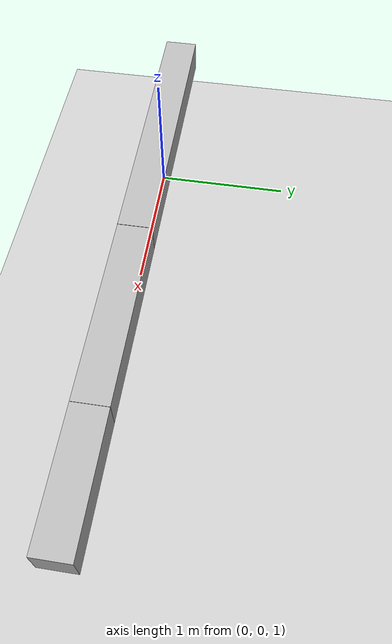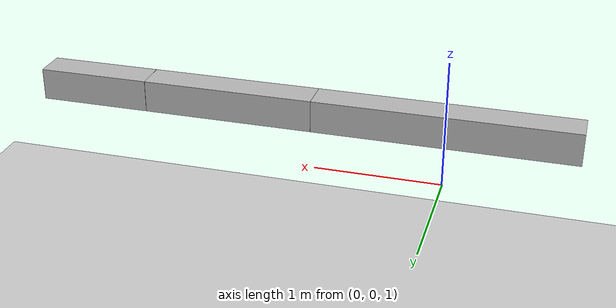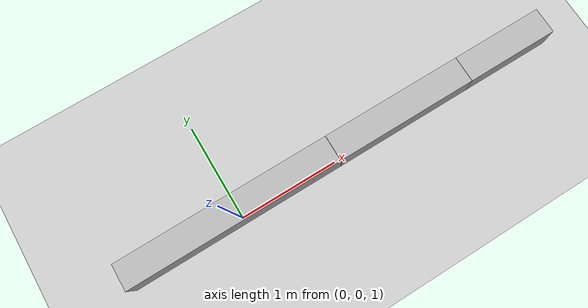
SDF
<?xml version="1.0"?>
<sdf version="1.6">
  <world name="planar_robot_pkgs">
    <physics name="default_physics" default="0" type="ode">
      <max_step_size>0.001</max_step_size>
      <real_time_factor>1</real_time_factor>
      <real_time_update_rate>1000</real_time_update_rate>
      <ode>
	<solver>
	  <type>quick</type>
	  <iters>100</iters>
	  <sor>1.0</sor>
	  <use_dynamic_moi_rescaling>false</use_dynamic_moi_rescaling>
	</solver>
      </ode>
    </physics>

    <include>
      <uri>model://ground_plane</uri>
    </include>

    <include>
      <uri>model://sun</uri>
    </include>

    <include>
      <uri>model://planar_robot</uri>
	<pose frame="">0 0 1.5 0 0 0</pose> <!-- 1.5=공중, 0.8=지면-->
      <plugin name="plugin" filename="libplanar_robot_pkgs.so"/>
    </include>

  </world>
</sdf>

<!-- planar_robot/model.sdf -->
<sdf version="1.5">
  <model name="planar_robot">
    <link name="link_1">
      <pose>0 0 0 0 0 0</pose>
      <inertial>
        <mass>1.0</mass>
        <inertia>
          <ixx>0.010417</ixx>
          <iyy>0.33854</iyy>
          <izz>0.33854</izz>
          <ixy>0</ixy>
          <ixz>0</ixz>
          <iyz>0</iyz>
        </inertia>
      </inertial>
      <visual name="link_1-visual">
        <pose>0 0 0.0 0 0 0</pose>
        <geometry>
          <box>
            <size>2 .25 .25</size>
          </box>
        </geometry>
      </visual>
    </link>
    <link name="link_2">
      <pose>1.667 0 0 0 0 0</pose>
      <inertial>
        <mass>0.667</mass>
        <inertia>
          <ixx>0.0069581</ixx>
          <iyy>0.10099</iyy>
          <izz>0.10099</izz>
          <ixy>0</ixy>
          <ixz>0</ixz>
          <iyz>0</iyz>
        </inertia>
      </inertial>
      <visual name="link_2-visual">
        <pose>0 0 0.0 0 0 0</pose>
        <geometry>
          <box>
            <size>1.33 .25 .25</size>
          </box>
        </geometry>
      </visual>
    </link>
    <link name="link_3">
      <pose>2.7689 0 0 0 0 0</pose>
      <inertial>
        <mass>0.44444</mass>
        <inertia>
          <ixx>0.0046298</ixx>
          <iyy>0.013457</iyy>
          <izz>0.013457</izz>
          <ixy>0</ixy>
          <ixz>0</ixz>
          <iyz>0</iyz>
        </inertia>
      </inertial>
      <visual name="link_2-visual">
        <pose>0 0 0.0 0 0 0</pose>
        <geometry>
          <box>
            <size>0.8712 .25 .25</size>
          </box>
        </geometry>
      </visual>
    </link>
    <joint type="revolute" name="joint_1">
      <pose>-1.0 0 0 0 0 0</pose>
      <child>link_1</child>
      <parent>world</parent>
      <axis>
        <xyz>0 0 1</xyz>
        <use_parent_model_frame>false</use_parent_model_frame>
      </axis>
    </joint>
    <joint type="revolute" name="joint_2">
      <pose>-.6667 0 0 0 0 0</pose>
      <child>link_2</child>
      <parent>link_1</parent>
      <axis>
        <xyz>0 0 1</xyz>
        <use_parent_model_frame>false</use_parent_model_frame>
      </axis>
    </joint>
    <joint type="revolute" name="joint_3">
      <pose>-.4356 0 0 0 0 0</pose>
      <child>link_3</child>
      <parent>link_2</parent>
      <axis>
        <xyz>0 0 1</xyz>
        <use_parent_model_frame>false</use_parent_model_frame>
      </axis>
    </joint>
  </model>
</sdf>
